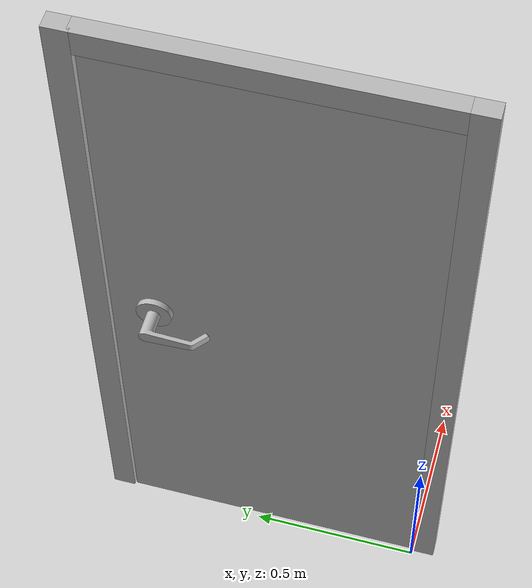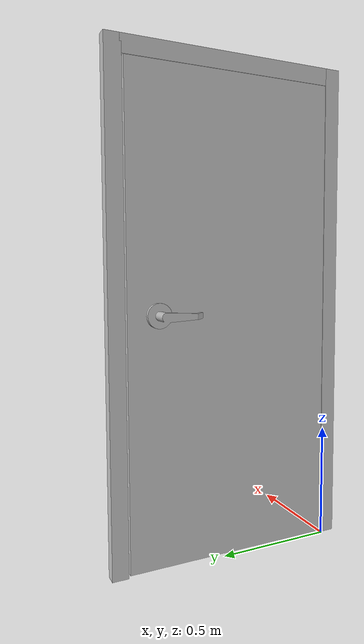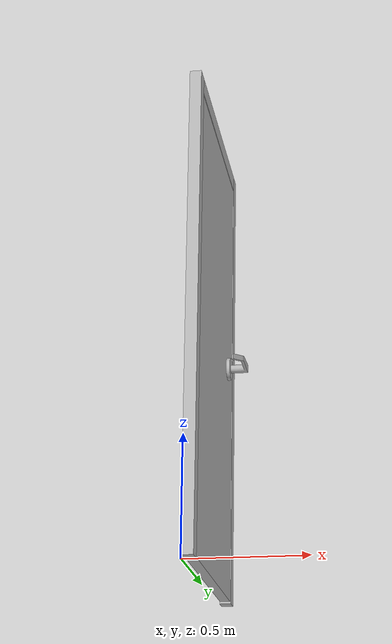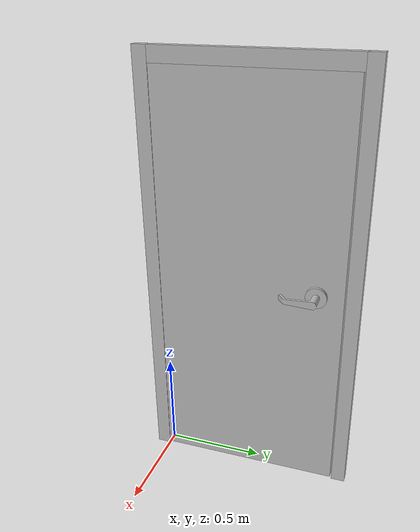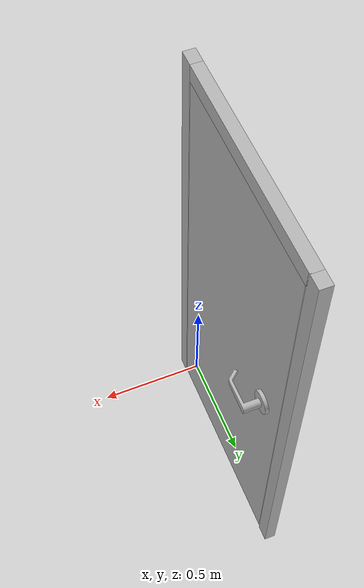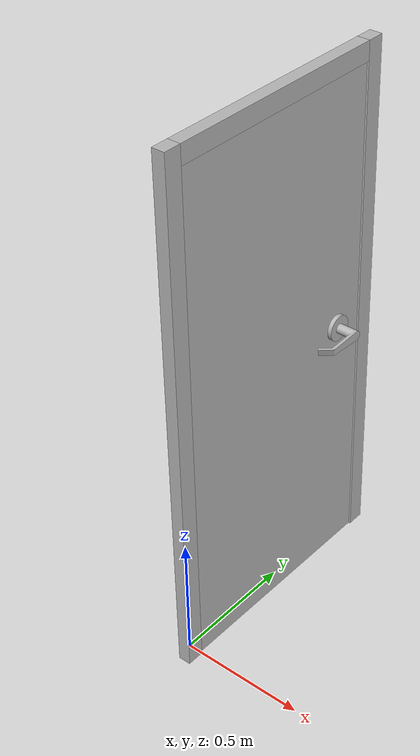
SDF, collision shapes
<?xml version='1.0'?>
<sdf version='1.6'>
  <model name='Hinge_door'>
    <model name='hinged_door'>
      <link name='frame'>
        <pose frame=''>0.06 -0.0005 0 0 -0 0</pose>
        <collision name='collision_1'>
          <pose frame=''>-0.025145 -0.03429 1.0541 0 -0 0</pose>
          <geometry>
            <box>
              <size>0.05029 0.06858 2.1082</size>
            </box>
          </geometry>
        </collision>
        <collision name='collision_2'>
          <pose frame=''>-0.025145 0.95631 1.0541 0 -0 0</pose>
          <geometry>
            <box>
              <size>0.05029 0.06858 2.1082</size>
            </box>
          </geometry>
        </collision>
        <collision name='collision_3'>
          <pose frame=''>-0.025145 0.46482 2.07137 0 -0 0</pose>
          <geometry>
            <box>
              <size>0.05029 0.92964 0.07366</size>
            </box>
          </geometry>
        </collision>
        <visual name='visual'>
          <pose frame=''>0 -0.06858 0 0 -0 0</pose>
          <geometry>
            <mesh>
              <uri>model://hinged_door/meshes/frame.dae</uri>
            </mesh>
          </geometry>
        </visual>
      </link>
      <link name='door'>
        <pose frame=''>-0 0 2.04 3.14159 -0 1.57</pose>
        <inertial>
          <mass>41.3256</mass>
          <pose frame=''>0.4569 0.0349 1.016 0 -0 0</pose>
          <inertia>
            <ixx>14.2053</ixx>
            <ixy>0.0004</ixy>
            <ixz>0</ixz>
            <iyy>17.1997</iyy>
            <iyz>0</iyz>
            <izz>3.0298</izz>
          </inertia>
        </inertial>
        <collision name='collision'>
          <pose frame=''>0.4569 0.0349 1.016 0 -0 0</pose>
          <geometry>
            <box>
              <size>0.9144 0.04445 2.032</size>
            </box>
          </geometry>
        </collision>
        <visual name='visual'>
          <pose frame=''>0 -0.06858 0 0 -0 0</pose>
          <geometry>
            <mesh>
              <uri>model://hinged_door/meshes/door.dae</uri>
            </mesh>
          </geometry>
        </visual>
      </link>
      <link name='handles'>
        <pose frame=''>0 0.8 1.05 -3.14159 0.001593 -1.57159</pose>
        <collision name='handle1_collision'>
          <pose frame=''>0.015 -0.015 0 -1.57 0 0</pose>
          <geometry>
            <mesh>
              <uri>model://door_handle/meshes/handle.dae</uri>
            </mesh>
          </geometry>
        </collision>
        <visual name='handle1_visual'>
          <pose frame=''>0.015 -0.015 0 -1.57 0 0</pose>
          <geometry>
            <mesh>
              <uri>model://door_handle/meshes/handle.dae</uri>
            </mesh>
          </geometry>
        </visual>
        <collision name='handle2_collision'>
          <pose frame=''>0.015 -0.055 0 1.57 -0 0</pose>
          <geometry>
            <mesh>
              <uri>model://door_handle/meshes/handle.dae</uri>
            </mesh>
          </geometry>
        </collision>
        <visual name='handle2_visual'>
          <pose frame=''>0.015 -0.055 0 1.57 -0 0</pose>
          <geometry>
            <mesh>
              <uri>model://door_handle/meshes/handle.dae</uri>
            </mesh>
          </geometry>
        </visual>
      </link>
      <joint name='handle' type='revolute'>
        <parent>door</parent>
        <child>handles</child>
        <pose frame=''>0.015 0 0 0 -0 0</pose>
        <axis>
          <xyz>1 0 0</xyz>
          <limit>
            <lower>0</lower>
            <upper>1.58</upper>
          </limit>
          <dynamics>
            <damping>1</damping>
            <friction>10</friction>
            <spring_reference>0</spring_reference>
            <spring_stiffness>0</spring_stiffness>
          </dynamics>
          <use_parent_model_frame>1</use_parent_model_frame>
        </axis>
        <physics>
          <ode>
            <cfm_damping>1</cfm_damping>
          </ode>
        </physics>
      </joint>
      <joint name='hinge' type='revolute'>
        <parent>frame</parent>
        <child>door</child>
        <axis>
          <xyz>0 0 1</xyz>
          <limit>
            <lower>0</lower>
            <upper>1.58</upper>
          </limit>
          <dynamics>
            <damping>1</damping>
            <friction>1</friction>
            <spring_reference>0</spring_reference>
            <spring_stiffness>0</spring_stiffness>
          </dynamics>
          <use_parent_model_frame>1</use_parent_model_frame>
        </axis>
        <physics>
          <ode>
            <cfm_damping>1</cfm_damping>
          </ode>
        </physics>
      </joint>
      <joint name='world_joint' type='revolute'>
        <child>frame</child>
        <parent>world</parent>
        <axis>
          <limit>
            <lower>0</lower>
            <upper>0</upper>
          </limit>
          <xyz>0 1 0</xyz>
          <dynamics>
            <damping>1</damping>
            <spring_reference>0</spring_reference>
            <spring_stiffness>0</spring_stiffness>
          </dynamics>
          <use_parent_model_frame>1</use_parent_model_frame>
        </axis>
        <physics>
          <ode>
            <cfm_damping>1</cfm_damping>
          </ode>
        </physics>
      </joint>
      <pose frame=''>-0 0 0 0 -0 0</pose>
    </model>
    <static>0</static>
    <allow_auto_disable>1</allow_auto_disable>
  </model>
</sdf>
